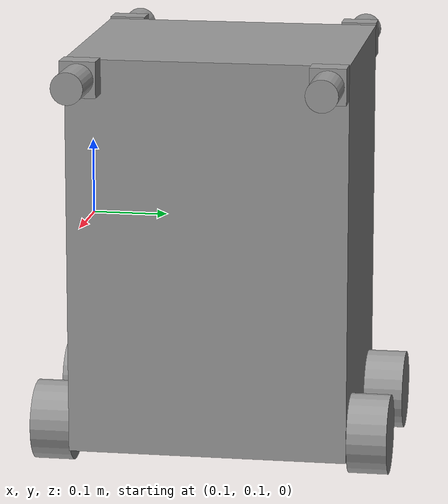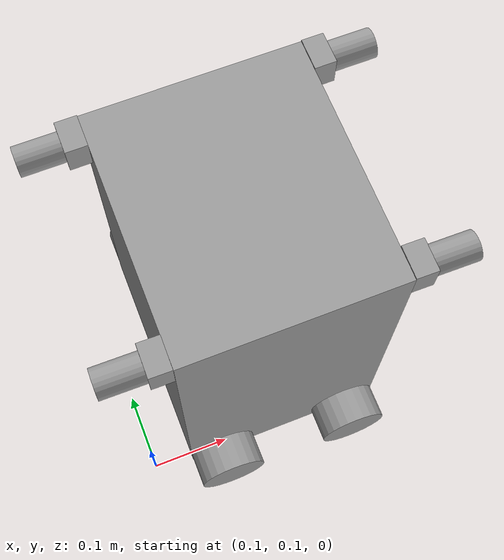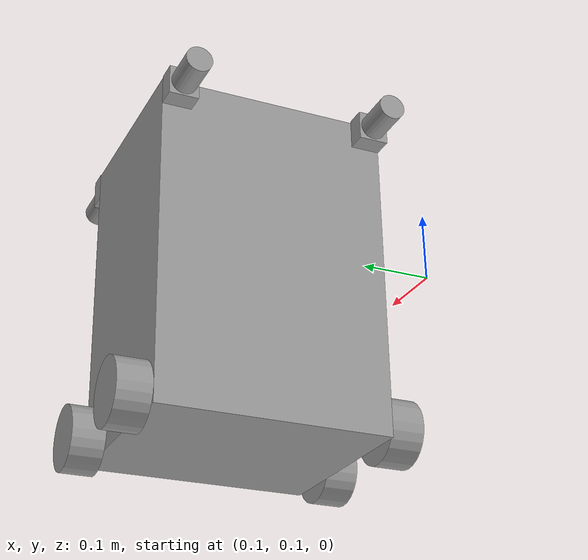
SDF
<?xml version='1.0'?>
<sdf version='1.6'>
  <model name='4WRobot_rev2'>
    <link name='link_0'>
      <pose frame=''>0.305794 0.311272 0.025 -0 -0 -0</pose>
      <inertial>
        <mass>1</mass>
        <inertia>
          <ixx>0.166667</ixx>
          <ixy>0</ixy>
          <ixz>0</ixz>
          <iyy>0.166667</iyy>
          <iyz>0</iyz>
          <izz>0.166667</izz>
        </inertia>
        <pose frame=''>0 0 0 0 -0 0</pose>
      </inertial>
      <self_collide>0</self_collide>
      <kinematic>0</kinematic>
      <visual name='visual'>
        <pose frame=''>0 0 0 0 -0 0</pose>
        <geometry>
          <box>
            <size>0.3 0.35 0.5</size>
          </box>
        </geometry>
        <material>
          <lighting>1</lighting>
          <script>
            <uri>file://media/materials/scripts/gazebo.material</uri>
            <name>Gazebo/Grey</name>
          </script>
          <ambient>0.3 0.3 0.3 1</ambient>
          <diffuse>0.7 0.7 0.7 1</diffuse>
          <specular>0.01 0.01 0.01 1</specular>
          <emissive>0 0 0 1</emissive>
          <shader type='vertex'>
            <normal_map>__default__</normal_map>
          </shader>
        </material>
        <transparency>0</transparency>
        <cast_shadows>1</cast_shadows>
      </visual>
      <collision name='collision'>
        <laser_retro>0</laser_retro>
        <max_contacts>10</max_contacts>
        <pose frame=''>0 0 0 0 -0 0</pose>
        <geometry>
          <box>
            <size>0.3 0.35 0.5</size>
          </box>
        </geometry>
        <surface>
          <friction>
            <ode>
              <mu>1</mu>
              <mu2>1</mu2>
              <fdir1>0 0 0</fdir1>
              <slip1>0</slip1>
              <slip2>0</slip2>
            </ode>
            <torsional>
              <coefficient>1</coefficient>
              <patch_radius>0</patch_radius>
              <surface_radius>0</surface_radius>
              <use_patch_radius>1</use_patch_radius>
              <ode>
                <slip>0</slip>
              </ode>
            </torsional>
          </friction>
          <bounce>
            <restitution_coefficient>0</restitution_coefficient>
            <threshold>1e+06</threshold>
          </bounce>
          <contact>
            <collide_without_contact>0</collide_without_contact>
            <collide_without_contact_bitmask>1</collide_without_contact_bitmask>
            <collide_bitmask>1</collide_bitmask>
            <ode>
              <soft_cfm>0</soft_cfm>
              <soft_erp>0.2</soft_erp>
              <kp>1e+13</kp>
              <kd>1</kd>
              <max_vel>0.01</max_vel>
              <min_depth>0</min_depth>
            </ode>
            <bullet>
              <split_impulse>1</split_impulse>
              <split_impulse_penetration_threshold>-0.01</split_impulse_penetration_threshold>
              <soft_cfm>0</soft_cfm>
              <soft_erp>0.2</soft_erp>
              <kp>1e+13</kp>
              <kd>1</kd>
            </bullet>
          </contact>
        </surface>
      </collision>
    </link>
    <link name='link_0_0_clone_0'>
      <pose frame=''>0.515794 0.463772 0.255 -3e-06 1.57 -3e-06</pose>
      <inertial>
        <mass>1</mass>
        <inertia>
          <ixx>0.145833</ixx>
          <ixy>0</ixy>
          <ixz>0</ixz>
          <iyy>0.145833</iyy>
          <iyz>0</iyz>
          <izz>0.125</izz>
        </inertia>
        <pose frame=''>0 0 0 0 -0 0</pose>
      </inertial>
      <self_collide>0</self_collide>
      <kinematic>0</kinematic>
      <visual name='visual_0'>
        <pose frame=''>0 0 0 0 -0 0</pose>
        <geometry>
          <cylinder>
            <radius>0.02</radius>
            <length>0.06</length>
          </cylinder>
        </geometry>
        <material>
          <lighting>1</lighting>
          <script>
            <uri>file://media/materials/scripts/gazebo.material</uri>
            <name>Gazebo/Grey</name>
          </script>
          <ambient>0.3 0.3 0.3 1</ambient>
          <diffuse>0.7 0.7 0.7 1</diffuse>
          <specular>0.01 0.01 0.01 1</specular>
          <emissive>0 0 0 1</emissive>
          <shader type='vertex'>
            <normal_map>__default__</normal_map>
          </shader>
        </material>
        <transparency>0</transparency>
        <cast_shadows>1</cast_shadows>
      </visual>
      <collision name='collision'>
        <laser_retro>0</laser_retro>
        <max_contacts>10</max_contacts>
        <pose frame=''>0 0 0 0 -0 0</pose>
        <geometry>
          <cylinder>
            <radius>0.02</radius>
            <length>0.06</length>
          </cylinder>
        </geometry>
        <surface>
          <friction>
            <ode>
              <mu>1</mu>
              <mu2>1</mu2>
              <fdir1>0 0 0</fdir1>
              <slip1>0</slip1>
              <slip2>0</slip2>
            </ode>
            <torsional>
              <coefficient>1</coefficient>
              <patch_radius>0</patch_radius>
              <surface_radius>0</surface_radius>
              <use_patch_radius>1</use_patch_radius>
              <ode>
                <slip>0</slip>
              </ode>
            </torsional>
          </friction>
          <bounce>
            <restitution_coefficient>0</restitution_coefficient>
            <threshold>1e+06</threshold>
          </bounce>
          <contact>
            <collide_without_contact>0</collide_without_contact>
            <collide_without_contact_bitmask>1</collide_without_contact_bitmask>
            <collide_bitmask>1</collide_bitmask>
            <ode>
              <soft_cfm>0</soft_cfm>
              <soft_erp>0.2</soft_erp>
              <kp>1e+13</kp>
              <kd>1</kd>
              <max_vel>0.01</max_vel>
              <min_depth>0</min_depth>
            </ode>
            <bullet>
              <split_impulse>1</split_impulse>
              <split_impulse_penetration_threshold>-0.01</split_impulse_penetration_threshold>
              <soft_cfm>0</soft_cfm>
              <soft_erp>0.2</soft_erp>
              <kp>1e+13</kp>
              <kd>1</kd>
            </bullet>
          </contact>
        </surface>
      </collision>
    </link>
    <link name='link_0_0_clone_0_clone'>
      <pose frame=''>0.096037 0.463844 0.255 0.002938 1.57 0.002917</pose>
      <inertial>
        <mass>1</mass>
        <inertia>
          <ixx>0.145833</ixx>
          <ixy>0</ixy>
          <ixz>0</ixz>
          <iyy>0.145833</iyy>
          <iyz>0</iyz>
          <izz>0.125</izz>
        </inertia>
        <pose frame=''>0 0 0 0 -0 0</pose>
      </inertial>
      <self_collide>0</self_collide>
      <kinematic>0</kinematic>
      <visual name='visual_0'>
        <pose frame=''>0 0 0 0 -0 0</pose>
        <geometry>
          <cylinder>
            <radius>0.02</radius>
            <length>0.06</length>
          </cylinder>
        </geometry>
        <material>
          <lighting>1</lighting>
          <script>
            <uri>file://media/materials/scripts/gazebo.material</uri>
            <name>Gazebo/Grey</name>
          </script>
          <ambient>0.3 0.3 0.3 1</ambient>
          <diffuse>0.7 0.7 0.7 1</diffuse>
          <specular>0.01 0.01 0.01 1</specular>
          <emissive>0 0 0 1</emissive>
          <shader type='vertex'>
            <normal_map>__default__</normal_map>
          </shader>
        </material>
        <transparency>0</transparency>
        <cast_shadows>1</cast_shadows>
      </visual>
      <collision name='collision'>
        <laser_retro>0</laser_retro>
        <max_contacts>10</max_contacts>
        <pose frame=''>0 0 0 0 -0 0</pose>
        <geometry>
          <cylinder>
            <radius>0.02</radius>
            <length>0.06</length>
          </cylinder>
        </geometry>
        <surface>
          <friction>
            <ode>
              <mu>1</mu>
              <mu2>1</mu2>
              <fdir1>0 0 0</fdir1>
              <slip1>0</slip1>
              <slip2>0</slip2>
            </ode>
            <torsional>
              <coefficient>1</coefficient>
              <patch_radius>0</patch_radius>
              <surface_radius>0</surface_radius>
              <use_patch_radius>1</use_patch_radius>
              <ode>
                <slip>0</slip>
              </ode>
            </torsional>
          </friction>
          <bounce>
            <restitution_coefficient>0</restitution_coefficient>
            <threshold>1e+06</threshold>
          </bounce>
          <contact>
            <collide_without_contact>0</collide_without_contact>
            <collide_without_contact_bitmask>1</collide_without_contact_bitmask>
            <collide_bitmask>1</collide_bitmask>
            <ode>
              <soft_cfm>0</soft_cfm>
              <soft_erp>0.2</soft_erp>
              <kp>1e+13</kp>
              <kd>1</kd>
              <max_vel>0.01</max_vel>
              <min_depth>0</min_depth>
            </ode>
            <bullet>
              <split_impulse>1</split_impulse>
              <split_impulse_penetration_threshold>-0.01</split_impulse_penetration_threshold>
              <soft_cfm>0</soft_cfm>
              <soft_erp>0.2</soft_erp>
              <kp>1e+13</kp>
              <kd>1</kd>
            </bullet>
          </contact>
        </surface>
      </collision>
    </link>
    <link name='link_0_0_clone_0_clone_0'>
      <pose frame=''>0.51579 0.158196 0.255 -0.000128 1.57 -0.01293</pose>
      <inertial>
        <mass>1</mass>
        <inertia>
          <ixx>0.145833</ixx>
          <ixy>0</ixy>
          <ixz>0</ixz>
          <iyy>0.145833</iyy>
          <iyz>0</iyz>
          <izz>0.125</izz>
        </inertia>
        <pose frame=''>0 0 0 0 -0 0</pose>
      </inertial>
      <self_collide>0</self_collide>
      <kinematic>0</kinematic>
      <visual name='visual_0'>
        <pose frame=''>0 0 0 0 -0 0</pose>
        <geometry>
          <cylinder>
            <radius>0.02</radius>
            <length>0.06</length>
          </cylinder>
        </geometry>
        <material>
          <lighting>1</lighting>
          <script>
            <uri>file://media/materials/scripts/gazebo.material</uri>
            <name>Gazebo/Grey</name>
          </script>
          <ambient>0.3 0.3 0.3 1</ambient>
          <diffuse>0.7 0.7 0.7 1</diffuse>
          <specular>0.01 0.01 0.01 1</specular>
          <emissive>0 0 0 1</emissive>
          <shader type='vertex'>
            <normal_map>__default__</normal_map>
          </shader>
        </material>
        <transparency>0</transparency>
        <cast_shadows>1</cast_shadows>
      </visual>
      <collision name='collision'>
        <laser_retro>0</laser_retro>
        <max_contacts>10</max_contacts>
        <pose frame=''>0 0 0 0 -0 0</pose>
        <geometry>
          <cylinder>
            <radius>0.02</radius>
            <length>0.06</length>
          </cylinder>
        </geometry>
        <surface>
          <friction>
            <ode>
              <mu>1</mu>
              <mu2>1</mu2>
              <fdir1>0 0 0</fdir1>
              <slip1>0</slip1>
              <slip2>0</slip2>
            </ode>
            <torsional>
              <coefficient>1</coefficient>
              <patch_radius>0</patch_radius>
              <surface_radius>0</surface_radius>
              <use_patch_radius>1</use_patch_radius>
              <ode>
                <slip>0</slip>
              </ode>
            </torsional>
          </friction>
          <bounce>
            <restitution_coefficient>0</restitution_coefficient>
            <threshold>1e+06</threshold>
          </bounce>
          <contact>
            <collide_without_contact>0</collide_without_contact>
            <collide_without_contact_bitmask>1</collide_without_contact_bitmask>
            <collide_bitmask>1</collide_bitmask>
            <ode>
              <soft_cfm>0</soft_cfm>
              <soft_erp>0.2</soft_erp>
              <kp>1e+13</kp>
              <kd>1</kd>
              <max_vel>0.01</max_vel>
              <min_depth>0</min_depth>
            </ode>
            <bullet>
              <split_impulse>1</split_impulse>
              <split_impulse_penetration_threshold>-0.01</split_impulse_penetration_threshold>
              <soft_cfm>0</soft_cfm>
              <soft_erp>0.2</soft_erp>
              <kp>1e+13</kp>
              <kd>1</kd>
            </bullet>
          </contact>
        </surface>
      </collision>
    </link>
    <link name='link_0_0_clone_0_clone_clone'>
      <pose frame=''>0.095798 0.15942 0.255 0.002918 1.57 -0.009905</pose>
      <inertial>
        <mass>1</mass>
        <inertia>
          <ixx>0.145833</ixx>
          <ixy>0</ixy>
          <ixz>0</ixz>
          <iyy>0.145833</iyy>
          <iyz>0</iyz>
          <izz>0.125</izz>
        </inertia>
        <pose frame=''>0 0 0 0 -0 0</pose>
      </inertial>
      <self_collide>0</self_collide>
      <kinematic>0</kinematic>
      <visual name='visual_0'>
        <pose frame=''>0 0 0 0 -0 0</pose>
        <geometry>
          <cylinder>
            <radius>0.02</radius>
            <length>0.06</length>
          </cylinder>
        </geometry>
        <material>
          <lighting>1</lighting>
          <script>
            <uri>file://media/materials/scripts/gazebo.material</uri>
            <name>Gazebo/Grey</name>
          </script>
          <ambient>0.3 0.3 0.3 1</ambient>
          <diffuse>0.7 0.7 0.7 1</diffuse>
          <specular>0.01 0.01 0.01 1</specular>
          <emissive>0 0 0 1</emissive>
          <shader type='vertex'>
            <normal_map>__default__</normal_map>
          </shader>
        </material>
        <transparency>0</transparency>
        <cast_shadows>1</cast_shadows>
      </visual>
      <collision name='collision'>
        <laser_retro>0</laser_retro>
        <max_contacts>10</max_contacts>
        <pose frame=''>0 0 0 0 -0 0</pose>
        <geometry>
          <cylinder>
            <radius>0.02</radius>
            <length>0.06</length>
          </cylinder>
        </geometry>
        <surface>
          <friction>
            <ode>
              <mu>1</mu>
              <mu2>1</mu2>
              <fdir1>0 0 0</fdir1>
              <slip1>0</slip1>
              <slip2>0</slip2>
            </ode>
            <torsional>
              <coefficient>1</coefficient>
              <patch_radius>0</patch_radius>
              <surface_radius>0</surface_radius>
              <use_patch_radius>1</use_patch_radius>
              <ode>
                <slip>0</slip>
              </ode>
            </torsional>
          </friction>
          <bounce>
            <restitution_coefficient>0</restitution_coefficient>
            <threshold>1e+06</threshold>
          </bounce>
          <contact>
            <collide_without_contact>0</collide_without_contact>
            <collide_without_contact_bitmask>1</collide_without_contact_bitmask>
            <collide_bitmask>1</collide_bitmask>
            <ode>
              <soft_cfm>0</soft_cfm>
              <soft_erp>0.2</soft_erp>
              <kp>1e+13</kp>
              <kd>1</kd>
              <max_vel>0.01</max_vel>
              <min_depth>0</min_depth>
            </ode>
            <bullet>
              <split_impulse>1</split_impulse>
              <split_impulse_penetration_threshold>-0.01</split_impulse_penetration_threshold>
              <soft_cfm>0</soft_cfm>
              <soft_erp>0.2</soft_erp>
              <kp>1e+13</kp>
              <kd>1</kd>
            </bullet>
          </contact>
        </surface>
      </collision>
    </link>
    <link name='link_1'>
      <pose frame=''>0.205794 0.111272 -0.2 1.57 -0 0</pose>
      <inertial>
        <mass>1</mass>
        <inertia>
          <ixx>0.145833</ixx>
          <ixy>0</ixy>
          <ixz>0</ixz>
          <iyy>0.145833</iyy>
          <iyz>0</iyz>
          <izz>0.125</izz>
        </inertia>
        <pose frame=''>0 0 0 0 -0 0</pose>
      </inertial>
      <self_collide>0</self_collide>
      <kinematic>0</kinematic>
      <visual name='visual'>
        <pose frame=''>0 0 0 0 -0 0</pose>
        <geometry>
          <cylinder>
            <radius>0.05</radius>
            <length>0.05</length>
          </cylinder>
        </geometry>
        <material>
          <lighting>1</lighting>
          <script>
            <uri>file://media/materials/scripts/gazebo.material</uri>
            <name>Gazebo/Grey</name>
          </script>
          <ambient>0.3 0.3 0.3 1</ambient>
          <diffuse>0.7 0.7 0.7 1</diffuse>
          <specular>0.01 0.01 0.01 1</specular>
          <emissive>0 0 0 1</emissive>
          <shader type='vertex'>
            <normal_map>__default__</normal_map>
          </shader>
        </material>
        <transparency>0</transparency>
        <cast_shadows>1</cast_shadows>
      </visual>
      <collision name='collision'>
        <laser_retro>0</laser_retro>
        <max_contacts>10</max_contacts>
        <pose frame=''>0 0 0 0 -0 0</pose>
        <geometry>
          <cylinder>
            <radius>0.05</radius>
            <length>0.05</length>
          </cylinder>
        </geometry>
        <surface>
          <friction>
            <ode>
              <mu>1</mu>
              <mu2>1</mu2>
              <fdir1>0 0 0</fdir1>
              <slip1>0</slip1>
              <slip2>0</slip2>
            </ode>
            <torsional>
              <coefficient>1</coefficient>
              <patch_radius>0</patch_radius>
              <surface_radius>0</surface_radius>
              <use_patch_radius>1</use_patch_radius>
              <ode>
                <slip>0</slip>
              </ode>
            </torsional>
          </friction>
          <bounce>
            <restitution_coefficient>0</restitution_coefficient>
            <threshold>1e+06</threshold>
          </bounce>
          <contact>
            <collide_without_contact>0</collide_without_contact>
            <collide_without_contact_bitmask>1</collide_without_contact_bitmask>
            <collide_bitmask>1</collide_bitmask>
            <ode>
              <soft_cfm>0</soft_cfm>
              <soft_erp>0.2</soft_erp>
              <kp>1e+13</kp>
              <kd>1</kd>
              <max_vel>0.01</max_vel>
              <min_depth>0</min_depth>
            </ode>
            <bullet>
              <split_impulse>1</split_impulse>
              <split_impulse_penetration_threshold>-0.01</split_impulse_penetration_threshold>
              <soft_cfm>0</soft_cfm>
              <soft_erp>0.2</soft_erp>
              <kp>1e+13</kp>
              <kd>1</kd>
            </bullet>
          </contact>
        </surface>
      </collision>
    </link>
    <link name='link_1_0_clone_clone'>
      <pose frame=''>0.140794 0.463772 0.255 0 -0 3.14</pose>
      <inertial>
        <mass>1</mass>
        <inertia>
          <ixx>0.166667</ixx>
          <ixy>0</ixy>
          <ixz>0</ixz>
          <iyy>0.166667</iyy>
          <iyz>0</iyz>
          <izz>0.166667</izz>
        </inertia>
        <pose frame=''>0 0 0 0 -0 0</pose>
      </inertial>
      <self_collide>0</self_collide>
      <kinematic>0</kinematic>
      <visual name='visual_0'>
        <pose frame=''>0 0 0 0 -0 0</pose>
        <geometry>
          <box>
            <size>0.03 0.045 0.045</size>
          </box>
        </geometry>
        <material>
          <lighting>1</lighting>
          <script>
            <uri>file://media/materials/scripts/gazebo.material</uri>
            <name>Gazebo/Grey</name>
          </script>
          <ambient>0.3 0.3 0.3 1</ambient>
          <diffuse>0.7 0.7 0.7 1</diffuse>
          <specular>0.01 0.01 0.01 1</specular>
          <emissive>0 0 0 1</emissive>
          <shader type='vertex'>
            <normal_map>__default__</normal_map>
          </shader>
        </material>
        <transparency>0</transparency>
        <cast_shadows>1</cast_shadows>
      </visual>
      <collision name='collision'>
        <laser_retro>0</laser_retro>
        <max_contacts>10</max_contacts>
        <pose frame=''>0 0 0 0 -0 0</pose>
        <geometry>
          <box>
            <size>0.03 0.045 0.045</size>
          </box>
        </geometry>
        <surface>
          <friction>
            <ode>
              <mu>1</mu>
              <mu2>1</mu2>
              <fdir1>0 0 0</fdir1>
              <slip1>0</slip1>
              <slip2>0</slip2>
            </ode>
            <torsional>
              <coefficient>1</coefficient>
              <patch_radius>0</patch_radius>
              <surface_radius>0</surface_radius>
              <use_patch_radius>1</use_patch_radius>
              <ode>
                <slip>0</slip>
              </ode>
            </torsional>
          </friction>
          <bounce>
            <restitution_coefficient>0</restitution_coefficient>
            <threshold>1e+06</threshold>
          </bounce>
          <contact>
            <collide_without_contact>0</collide_without_contact>
            <collide_without_contact_bitmask>1</collide_without_contact_bitmask>
            <collide_bitmask>1</collide_bitmask>
            <ode>
              <soft_cfm>0</soft_cfm>
              <soft_erp>0.2</soft_erp>
              <kp>1e+13</kp>
              <kd>1</kd>
              <max_vel>0.01</max_vel>
              <min_depth>0</min_depth>
            </ode>
            <bullet>
              <split_impulse>1</split_impulse>
              <split_impulse_penetration_threshold>-0.01</split_impulse_penetration_threshold>
              <soft_cfm>0</soft_cfm>
              <soft_erp>0.2</soft_erp>
              <kp>1e+13</kp>
              <kd>1</kd>
            </bullet>
          </contact>
        </surface>
      </collision>
    </link>
    <link name='link_1_0_clone_clone_0'>
      <pose frame=''>0.470794 0.463772 0.255 -0 -0 -0</pose>
      <inertial>
        <mass>1</mass>
        <inertia>
          <ixx>0.166667</ixx>
          <ixy>0</ixy>
          <ixz>0</ixz>
          <iyy>0.166667</iyy>
          <iyz>0</iyz>
          <izz>0.166667</izz>
        </inertia>
        <pose frame=''>0 0 0 0 -0 0</pose>
      </inertial>
      <self_collide>0</self_collide>
      <kinematic>0</kinematic>
      <visual name='visual_0'>
        <pose frame=''>0 0 0 0 -0 0</pose>
        <geometry>
          <box>
            <size>0.03 0.045 0.045</size>
          </box>
        </geometry>
        <material>
          <lighting>1</lighting>
          <script>
            <uri>file://media/materials/scripts/gazebo.material</uri>
            <name>Gazebo/Grey</name>
          </script>
          <ambient>0.3 0.3 0.3 1</ambient>
          <diffuse>0.7 0.7 0.7 1</diffuse>
          <specular>0.01 0.01 0.01 1</specular>
          <emissive>0 0 0 1</emissive>
          <shader type='vertex'>
            <normal_map>__default__</normal_map>
          </shader>
        </material>
        <transparency>0</transparency>
        <cast_shadows>1</cast_shadows>
      </visual>
      <collision name='collision'>
        <laser_retro>0</laser_retro>
        <max_contacts>10</max_contacts>
        <pose frame=''>0 0 0 0 -0 0</pose>
        <geometry>
          <box>
            <size>0.03 0.045 0.045</size>
          </box>
        </geometry>
        <surface>
          <friction>
            <ode>
              <mu>1</mu>
              <mu2>1</mu2>
              <fdir1>0 0 0</fdir1>
              <slip1>0</slip1>
              <slip2>0</slip2>
            </ode>
            <torsional>
              <coefficient>1</coefficient>
              <patch_radius>0</patch_radius>
              <surface_radius>0</surface_radius>
              <use_patch_radius>1</use_patch_radius>
              <ode>
                <slip>0</slip>
              </ode>
            </torsional>
          </friction>
          <bounce>
            <restitution_coefficient>0</restitution_coefficient>
            <threshold>1e+06</threshold>
          </bounce>
          <contact>
            <collide_without_contact>0</collide_without_contact>
            <collide_without_contact_bitmask>1</collide_without_contact_bitmask>
            <collide_bitmask>1</collide_bitmask>
            <ode>
              <soft_cfm>0</soft_cfm>
              <soft_erp>0.2</soft_erp>
              <kp>1e+13</kp>
              <kd>1</kd>
              <max_vel>0.01</max_vel>
              <min_depth>0</min_depth>
            </ode>
            <bullet>
              <split_impulse>1</split_impulse>
              <split_impulse_penetration_threshold>-0.01</split_impulse_penetration_threshold>
              <soft_cfm>0</soft_cfm>
              <soft_erp>0.2</soft_erp>
              <kp>1e+13</kp>
              <kd>1</kd>
            </bullet>
          </contact>
        </surface>
      </collision>
    </link>
    <link name='link_1_0_clone_clone_0_clone'>
      <pose frame=''>0.470794 0.158772 0.255 -0 2e-06 -0.012802</pose>
      <inertial>
        <mass>1</mass>
        <inertia>
          <ixx>0.166667</ixx>
          <ixy>0</ixy>
          <ixz>0</ixz>
          <iyy>0.166667</iyy>
          <iyz>0</iyz>
          <izz>0.166667</izz>
        </inertia>
        <pose frame=''>0 0 0 0 -0 0</pose>
      </inertial>
      <self_collide>0</self_collide>
      <kinematic>0</kinematic>
      <visual name='visual_0'>
        <pose frame=''>0 0 0 0 -0 0</pose>
        <geometry>
          <box>
            <size>0.03 0.045 0.045</size>
          </box>
        </geometry>
        <material>
          <lighting>1</lighting>
          <script>
            <uri>file://media/materials/scripts/gazebo.material</uri>
            <name>Gazebo/Grey</name>
          </script>
          <ambient>0.3 0.3 0.3 1</ambient>
          <diffuse>0.7 0.7 0.7 1</diffuse>
          <specular>0.01 0.01 0.01 1</specular>
          <emissive>0 0 0 1</emissive>
          <shader type='vertex'>
            <normal_map>__default__</normal_map>
          </shader>
        </material>
        <transparency>0</transparency>
        <cast_shadows>1</cast_shadows>
      </visual>
      <collision name='collision'>
        <laser_retro>0</laser_retro>
        <max_contacts>10</max_contacts>
        <pose frame=''>0 0 0 0 -0 0</pose>
        <geometry>
          <box>
            <size>0.03 0.045 0.045</size>
          </box>
        </geometry>
        <surface>
          <friction>
            <ode>
              <mu>1</mu>
              <mu2>1</mu2>
              <fdir1>0 0 0</fdir1>
              <slip1>0</slip1>
              <slip2>0</slip2>
            </ode>
            <torsional>
              <coefficient>1</coefficient>
              <patch_radius>0</patch_radius>
              <surface_radius>0</surface_radius>
              <use_patch_radius>1</use_patch_radius>
              <ode>
                <slip>0</slip>
              </ode>
            </torsional>
          </friction>
          <bounce>
            <restitution_coefficient>0</restitution_coefficient>
            <threshold>1e+06</threshold>
          </bounce>
          <contact>
            <collide_without_contact>0</collide_without_contact>
            <collide_without_contact_bitmask>1</collide_without_contact_bitmask>
            <collide_bitmask>1</collide_bitmask>
            <ode>
              <soft_cfm>0</soft_cfm>
              <soft_erp>0.2</soft_erp>
              <kp>1e+13</kp>
              <kd>1</kd>
              <max_vel>0.01</max_vel>
              <min_depth>0</min_depth>
            </ode>
            <bullet>
              <split_impulse>1</split_impulse>
              <split_impulse_penetration_threshold>-0.01</split_impulse_penetration_threshold>
              <soft_cfm>0</soft_cfm>
              <soft_erp>0.2</soft_erp>
              <kp>1e+13</kp>
              <kd>1</kd>
            </bullet>
          </contact>
        </surface>
      </collision>
    </link>
    <link name='link_1_0_clone_clone_clone'>
      <pose frame=''>0.140794 0.158772 0.255 0 -2e-06 3.1272</pose>
      <inertial>
        <mass>1</mass>
        <inertia>
          <ixx>0.166667</ixx>
          <ixy>0</ixy>
          <ixz>0</ixz>
          <iyy>0.166667</iyy>
          <iyz>0</iyz>
          <izz>0.166667</izz>
        </inertia>
        <pose frame=''>0 0 0 0 -0 0</pose>
      </inertial>
      <self_collide>0</self_collide>
      <kinematic>0</kinematic>
      <visual name='visual_0'>
        <pose frame=''>0 0 0 0 -0 0</pose>
        <geometry>
          <box>
            <size>0.03 0.045 0.045</size>
          </box>
        </geometry>
        <material>
          <lighting>1</lighting>
          <script>
            <uri>file://media/materials/scripts/gazebo.material</uri>
            <name>Gazebo/Grey</name>
          </script>
          <ambient>0.3 0.3 0.3 1</ambient>
          <diffuse>0.7 0.7 0.7 1</diffuse>
          <specular>0.01 0.01 0.01 1</specular>
          <emissive>0 0 0 1</emissive>
          <shader type='vertex'>
            <normal_map>__default__</normal_map>
          </shader>
        </material>
        <transparency>0</transparency>
        <cast_shadows>1</cast_shadows>
      </visual>
      <collision name='collision'>
        <laser_retro>0</laser_retro>
        <max_contacts>10</max_contacts>
        <pose frame=''>0 0 0 0 -0 0</pose>
        <geometry>
          <box>
            <size>0.03 0.045 0.045</size>
          </box>
        </geometry>
        <surface>
          <friction>
            <ode>
              <mu>1</mu>
              <mu2>1</mu2>
              <fdir1>0 0 0</fdir1>
              <slip1>0</slip1>
              <slip2>0</slip2>
            </ode>
            <torsional>
              <coefficient>1</coefficient>
              <patch_radius>0</patch_radius>
              <surface_radius>0</surface_radius>
              <use_patch_radius>1</use_patch_radius>
              <ode>
                <slip>0</slip>
              </ode>
            </torsional>
          </friction>
          <bounce>
            <restitution_coefficient>0</restitution_coefficient>
            <threshold>1e+06</threshold>
          </bounce>
          <contact>
            <collide_without_contact>0</collide_without_contact>
            <collide_without_contact_bitmask>1</collide_without_contact_bitmask>
            <collide_bitmask>1</collide_bitmask>
            <ode>
              <soft_cfm>0</soft_cfm>
              <soft_erp>0.2</soft_erp>
              <kp>1e+13</kp>
              <kd>1</kd>
              <max_vel>0.01</max_vel>
              <min_depth>0</min_depth>
            </ode>
            <bullet>
              <split_impulse>1</split_impulse>
              <split_impulse_penetration_threshold>-0.01</split_impulse_penetration_threshold>
              <soft_cfm>0</soft_cfm>
              <soft_erp>0.2</soft_erp>
              <kp>1e+13</kp>
              <kd>1</kd>
            </bullet>
          </contact>
        </surface>
      </collision>
    </link>
    <link name='link_1_clone'>
      <pose frame=''>0.405794 0.111272 -0.2 1.57 -0 0</pose>
      <inertial>
        <mass>1</mass>
        <inertia>
          <ixx>0.145833</ixx>
          <ixy>0</ixy>
          <ixz>0</ixz>
          <iyy>0.145833</iyy>
          <iyz>0</iyz>
          <izz>0.125</izz>
        </inertia>
        <pose frame=''>0 0 0 0 -0 0</pose>
      </inertial>
      <self_collide>0</self_collide>
      <kinematic>0</kinematic>
      <visual name='visual'>
        <pose frame=''>0 0 0 0 -0 0</pose>
        <geometry>
          <cylinder>
            <radius>0.05</radius>
            <length>0.05</length>
          </cylinder>
        </geometry>
        <material>
          <lighting>1</lighting>
          <script>
            <uri>file://media/materials/scripts/gazebo.material</uri>
            <name>Gazebo/Grey</name>
          </script>
          <ambient>0.3 0.3 0.3 1</ambient>
          <diffuse>0.7 0.7 0.7 1</diffuse>
          <specular>0.01 0.01 0.01 1</specular>
          <emissive>0 0 0 1</emissive>
          <shader type='vertex'>
            <normal_map>__default__</normal_map>
          </shader>
        </material>
        <transparency>0</transparency>
        <cast_shadows>1</cast_shadows>
      </visual>
      <collision name='collision'>
        <laser_retro>0</laser_retro>
        <max_contacts>10</max_contacts>
        <pose frame=''>0 0 0 0 -0 0</pose>
        <geometry>
          <cylinder>
            <radius>0.05</radius>
            <length>0.05</length>
          </cylinder>
        </geometry>
        <surface>
          <friction>
            <ode>
              <mu>1</mu>
              <mu2>1</mu2>
              <fdir1>0 0 0</fdir1>
              <slip1>0</slip1>
              <slip2>0</slip2>
            </ode>
            <torsional>
              <coefficient>1</coefficient>
              <patch_radius>0</patch_radius>
              <surface_radius>0</surface_radius>
              <use_patch_radius>1</use_patch_radius>
              <ode>
                <slip>0</slip>
              </ode>
            </torsional>
          </friction>
          <bounce>
            <restitution_coefficient>0</restitution_coefficient>
            <threshold>1e+06</threshold>
          </bounce>
          <contact>
            <collide_without_contact>0</collide_without_contact>
            <collide_without_contact_bitmask>1</collide_without_contact_bitmask>
            <collide_bitmask>1</collide_bitmask>
            <ode>
              <soft_cfm>0</soft_cfm>
              <soft_erp>0.2</soft_erp>
              <kp>1e+13</kp>
              <kd>1</kd>
              <max_vel>0.01</max_vel>
              <min_depth>0</min_depth>
            </ode>
            <bullet>
              <split_impulse>1</split_impulse>
              <split_impulse_penetration_threshold>-0.01</split_impulse_penetration_threshold>
              <soft_cfm>0</soft_cfm>
              <soft_erp>0.2</soft_erp>
              <kp>1e+13</kp>
              <kd>1</kd>
            </bullet>
          </contact>
        </surface>
      </collision>
    </link>
    <link name='link_1_clone_clone'>
      <pose frame=''>0.405794 0.511272 -0.2 1.57 -0 0</pose>
      <inertial>
        <mass>1</mass>
        <inertia>
          <ixx>0.145833</ixx>
          <ixy>0</ixy>
          <ixz>0</ixz>
          <iyy>0.145833</iyy>
          <iyz>0</iyz>
          <izz>0.125</izz>
        </inertia>
        <pose frame=''>0 0 0 0 -0 0</pose>
      </inertial>
      <self_collide>0</self_collide>
      <kinematic>0</kinematic>
      <visual name='visual'>
        <pose frame=''>0 0 0 0 -0 0</pose>
        <geometry>
          <cylinder>
            <radius>0.05</radius>
            <length>0.05</length>
          </cylinder>
        </geometry>
        <material>
          <lighting>1</lighting>
          <script>
            <uri>file://media/materials/scripts/gazebo.material</uri>
            <name>Gazebo/Grey</name>
          </script>
          <ambient>0.3 0.3 0.3 1</ambient>
          <diffuse>0.7 0.7 0.7 1</diffuse>
          <specular>0.01 0.01 0.01 1</specular>
          <emissive>0 0 0 1</emissive>
          <shader type='vertex'>
            <normal_map>__default__</normal_map>
          </shader>
        </material>
        <transparency>0</transparency>
        <cast_shadows>1</cast_shadows>
      </visual>
      <collision name='collision'>
        <laser_retro>0</laser_retro>
        <max_contacts>10</max_contacts>
        <pose frame=''>0 0 0 0 -0 0</pose>
        <geometry>
          <cylinder>
            <radius>0.05</radius>
            <length>0.05</length>
          </cylinder>
        </geometry>
        <surface>
          <friction>
            <ode>
              <mu>1</mu>
              <mu2>1</mu2>
              <fdir1>0 0 0</fdir1>
              <slip1>0</slip1>
              <slip2>0</slip2>
            </ode>
            <torsional>
              <coefficient>1</coefficient>
              <patch_radius>0</patch_radius>
              <surface_radius>0</surface_radius>
              <use_patch_radius>1</use_patch_radius>
              <ode>
                <slip>0</slip>
              </ode>
            </torsional>
          </friction>
          <bounce>
            <restitution_coefficient>0</restitution_coefficient>
            <threshold>1e+06</threshold>
          </bounce>
          <contact>
            <collide_without_contact>0</collide_without_contact>
            <collide_without_contact_bitmask>1</collide_without_contact_bitmask>
            <collide_bitmask>1</collide_bitmask>
            <ode>
              <soft_cfm>0</soft_cfm>
              <soft_erp>0.2</soft_erp>
              <kp>1e+13</kp>
              <kd>1</kd>
              <max_vel>0.01</max_vel>
              <min_depth>0</min_depth>
            </ode>
            <bullet>
              <split_impulse>1</split_impulse>
              <split_impulse_penetration_threshold>-0.01</split_impulse_penetration_threshold>
              <soft_cfm>0</soft_cfm>
              <soft_erp>0.2</soft_erp>
              <kp>1e+13</kp>
              <kd>1</kd>
            </bullet>
          </contact>
        </surface>
      </collision>
    </link>
    <link name='link_1_clone_clone_clone'>
      <pose frame=''>0.205794 0.511272 -0.2 1.57 -0 0</pose>
      <inertial>
        <mass>1</mass>
        <inertia>
          <ixx>0.145833</ixx>
          <ixy>0</ixy>
          <ixz>0</ixz>
          <iyy>0.145833</iyy>
          <iyz>0</iyz>
          <izz>0.125</izz>
        </inertia>
        <pose frame=''>0 0 0 0 -0 0</pose>
      </inertial>
      <self_collide>0</self_collide>
      <kinematic>0</kinematic>
      <visual name='visual'>
        <pose frame=''>0 0 0 0 -0 0</pose>
        <geometry>
          <cylinder>
            <radius>0.05</radius>
            <length>0.05</length>
          </cylinder>
        </geometry>
        <material>
          <lighting>1</lighting>
          <script>
            <uri>file://media/materials/scripts/gazebo.material</uri>
            <name>Gazebo/Grey</name>
          </script>
          <ambient>0.3 0.3 0.3 1</ambient>
          <diffuse>0.7 0.7 0.7 1</diffuse>
          <specular>0.01 0.01 0.01 1</specular>
          <emissive>0 0 0 1</emissive>
          <shader type='vertex'>
            <normal_map>__default__</normal_map>
          </shader>
        </material>
        <transparency>0</transparency>
        <cast_shadows>1</cast_shadows>
      </visual>
      <collision name='collision'>
        <laser_retro>0</laser_retro>
        <max_contacts>10</max_contacts>
        <pose frame=''>0 0 0 0 -0 0</pose>
        <geometry>
          <cylinder>
            <radius>0.05</radius>
            <length>0.05</length>
          </cylinder>
        </geometry>
        <surface>
          <friction>
            <ode>
              <mu>1</mu>
              <mu2>1</mu2>
              <fdir1>0 0 0</fdir1>
              <slip1>0</slip1>
              <slip2>0</slip2>
            </ode>
            <torsional>
              <coefficient>1</coefficient>
              <patch_radius>0</patch_radius>
              <surface_radius>0</surface_radius>
              <use_patch_radius>1</use_patch_radius>
              <ode>
                <slip>0</slip>
              </ode>
            </torsional>
          </friction>
          <bounce>
            <restitution_coefficient>0</restitution_coefficient>
            <threshold>1e+06</threshold>
          </bounce>
          <contact>
            <collide_without_contact>0</collide_without_contact>
            <collide_without_contact_bitmask>1</collide_without_contact_bitmask>
            <collide_bitmask>1</collide_bitmask>
            <ode>
              <soft_cfm>0</soft_cfm>
              <soft_erp>0.2</soft_erp>
              <kp>1e+13</kp>
              <kd>1</kd>
              <max_vel>0.01</max_vel>
              <min_depth>0</min_depth>
            </ode>
            <bullet>
              <split_impulse>1</split_impulse>
              <split_impulse_penetration_threshold>-0.01</split_impulse_penetration_threshold>
              <soft_cfm>0</soft_cfm>
              <soft_erp>0.2</soft_erp>
              <kp>1e+13</kp>
              <kd>1</kd>
            </bullet>
          </contact>
        </surface>
      </collision>
    </link>
    <joint name='link_0_JOINT_0' type='revolute'>
      <parent>link_0</parent>
      <child>link_1_clone_clone</child>
      <pose frame=''>0 0 0 0 -0 0</pose>
      <axis>
        <xyz>1 0 0</xyz>
        <use_parent_model_frame>0</use_parent_model_frame>
        <limit>
          <lower>-1.79769e+308</lower>
          <upper>1.79769e+308</upper>
          <effort>-1</effort>
          <velocity>-1</velocity>
        </limit>
        <dynamics>
          <spring_reference>0</spring_reference>
          <spring_stiffness>0</spring_stiffness>
          <damping>0</damping>
          <friction>0</friction>
        </dynamics>
      </axis>
      <physics>
        <ode>
          <limit>
            <cfm>0</cfm>
            <erp>0.2</erp>
          </limit>
          <suspension>
            <cfm>0</cfm>
            <erp>0.2</erp>
          </suspension>
        </ode>
      </physics>
    </joint>
    <joint name='link_0_JOINT_11' type='revolute'>
      <parent>link_0</parent>
      <child>link_1_0_clone_clone_0_clone</child>
      <pose frame=''>0 0 0 0 -0 0</pose>
      <axis>
        <xyz>1 0 0</xyz>
        <use_parent_model_frame>0</use_parent_model_frame>
        <limit>
          <lower>-1.79769e+308</lower>
          <upper>1.79769e+308</upper>
          <effort>-1</effort>
          <velocity>-1</velocity>
        </limit>
        <dynamics>
          <spring_reference>0</spring_reference>
          <spring_stiffness>0</spring_stiffness>
          <damping>0</damping>
        </dynamics>
      </axis>
      <physics>
        <ode>
          <limit>
            <cfm>0</cfm>
            <erp>0.2</erp>
          </limit>
          <suspension>
            <cfm>0</cfm>
            <erp>0.2</erp>
          </suspension>
        </ode>
      </physics>
    </joint>
    <joint name='link_0_JOINT_1' type='revolute'>
      <parent>link_0</parent>
      <child>link_1_clone_clone_clone</child>
      <pose frame=''>0 0 0 0 -0 0</pose>
      <axis>
        <xyz>1 0 0</xyz>
        <use_parent_model_frame>0</use_parent_model_frame>
        <limit>
          <lower>-1.79769e+308</lower>
          <upper>1.79769e+308</upper>
          <effort>-1</effort>
          <velocity>-1</velocity>
        </limit>
        <dynamics>
          <spring_reference>0</spring_reference>
          <spring_stiffness>0</spring_stiffness>
          <damping>0</damping>
          <friction>0</friction>
        </dynamics>
      </axis>
      <physics>
        <ode>
          <limit>
            <cfm>0</cfm>
            <erp>0.2</erp>
          </limit>
          <suspension>
            <cfm>0</cfm>
            <erp>0.2</erp>
          </suspension>
        </ode>
      </physics>
    </joint>
    <joint name='link_0_JOINT_2' type='revolute'>
      <parent>link_0</parent>
      <child>link_1</child>
      <pose frame=''>0 0 0 0 -0 0</pose>
      <axis>
        <xyz>1 0 0</xyz>
        <use_parent_model_frame>0</use_parent_model_frame>
        <limit>
          <lower>-1.79769e+308</lower>
          <upper>1.79769e+308</upper>
          <effort>-1</effort>
          <velocity>-1</velocity>
        </limit>
        <dynamics>
          <spring_reference>0</spring_reference>
          <spring_stiffness>0</spring_stiffness>
          <damping>0</damping>
          <friction>0</friction>
        </dynamics>
      </axis>
      <physics>
        <ode>
          <limit>
            <cfm>0</cfm>
            <erp>0.2</erp>
          </limit>
          <suspension>
            <cfm>0</cfm>
            <erp>0.2</erp>
          </suspension>
        </ode>
      </physics>
    </joint>
    <joint name='link_0_JOINT_3' type='revolute'>
      <parent>link_0</parent>
      <child>link_1_clone</child>
      <pose frame=''>0 0 0 0 -0 0</pose>
      <axis>
        <xyz>1 0 0</xyz>
        <use_parent_model_frame>0</use_parent_model_frame>
        <limit>
          <lower>-1.79769e+308</lower>
          <upper>1.79769e+308</upper>
          <effort>-1</effort>
          <velocity>-1</velocity>
        </limit>
        <dynamics>
          <spring_reference>0</spring_reference>
          <spring_stiffness>0</spring_stiffness>
          <damping>0</damping>
          <friction>0</friction>
        </dynamics>
      </axis>
      <physics>
        <ode>
          <limit>
            <cfm>0</cfm>
            <erp>0.2</erp>
          </limit>
          <suspension>
            <cfm>0</cfm>
            <erp>0.2</erp>
          </suspension>
        </ode>
      </physics>
    </joint>
    <joint name='link_0_JOINT_5' type='revolute'>
      <parent>link_0</parent>
      <child>link_1_0_clone_clone</child>
      <pose frame=''>0 0 0 0 -0 0</pose>
      <axis>
        <xyz>1 0 0</xyz>
        <use_parent_model_frame>0</use_parent_model_frame>
        <limit>
          <lower>-1.79769e+308</lower>
          <upper>1.79769e+308</upper>
          <effort>-1</effort>
          <velocity>-1</velocity>
        </limit>
        <dynamics>
          <spring_reference>0</spring_reference>
          <spring_stiffness>0</spring_stiffness>
          <damping>0</damping>
          <friction>0</friction>
        </dynamics>
      </axis>
      <physics>
        <ode>
          <limit>
            <cfm>0</cfm>
            <erp>0.2</erp>
          </limit>
          <suspension>
            <cfm>0</cfm>
            <erp>0.2</erp>
          </suspension>
        </ode>
      </physics>
    </joint>
    <joint name='link_0_JOINT_7' type='revolute'>
      <parent>link_0</parent>
      <child>link_1_0_clone_clone_clone</child>
      <pose frame=''>0 0 0 0 -0 0</pose>
      <axis>
        <xyz>1 0 0</xyz>
        <use_parent_model_frame>0</use_parent_model_frame>
        <limit>
          <lower>-1.79769e+308</lower>
          <upper>1.79769e+308</upper>
          <effort>-1</effort>
          <velocity>-1</velocity>
        </limit>
        <dynamics>
          <spring_reference>0</spring_reference>
          <spring_stiffness>0</spring_stiffness>
          <damping>0</damping>
        </dynamics>
      </axis>
      <physics>
        <ode>
          <limit>
            <cfm>0</cfm>
            <erp>0.2</erp>
          </limit>
          <suspension>
            <cfm>0</cfm>
            <erp>0.2</erp>
          </suspension>
        </ode>
      </physics>
    </joint>
    <joint name='link_0_JOINT_9' type='revolute'>
      <parent>link_0</parent>
      <child>link_1_0_clone_clone_0</child>
      <pose frame=''>0 0 0 0 -0 0</pose>
      <axis>
        <xyz>1 0 0</xyz>
        <use_parent_model_frame>0</use_parent_model_frame>
        <limit>
          <lower>-1.79769e+308</lower>
          <upper>1.79769e+308</upper>
          <effort>-1</effort>
          <velocity>-1</velocity>
        </limit>
        <dynamics>
          <spring_reference>0</spring_reference>
          <spring_stiffness>0</spring_stiffness>
          <damping>0</damping>
        </dynamics>
      </axis>
      <physics>
        <ode>
          <limit>
            <cfm>0</cfm>
            <erp>0.2</erp>
          </limit>
          <suspension>
            <cfm>0</cfm>
            <erp>0.2</erp>
          </suspension>
        </ode>
      </physics>
    </joint>
    <joint name='link_1_0_clone_clone_0_JOINT_10' type='revolute'>
      <parent>link_1_0_clone_clone_0</parent>
      <child>link_0_0_clone_0</child>
      <pose frame=''>0 0 0 0 -0 0</pose>
      <axis>
        <xyz>1 0 0</xyz>
        <use_parent_model_frame>0</use_parent_model_frame>
        <limit>
          <lower>-1.79769e+308</lower>
          <upper>1.79769e+308</upper>
          <effort>-1</effort>
          <velocity>-1</velocity>
        </limit>
        <dynamics>
          <spring_reference>0</spring_reference>
          <spring_stiffness>0</spring_stiffness>
          <damping>0</damping>
        </dynamics>
      </axis>
      <physics>
        <ode>
          <limit>
            <cfm>0</cfm>
            <erp>0.2</erp>
          </limit>
          <suspension>
            <cfm>0</cfm>
            <erp>0.2</erp>
          </suspension>
        </ode>
      </physics>
    </joint>
    <joint name='link_1_0_clone_clone_0_clone_JOINT_12' type='revolute'>
      <parent>link_1_0_clone_clone_0_clone</parent>
      <child>link_0_0_clone_0_clone_0</child>
      <pose frame=''>0 0 0 0 -0 0</pose>
      <axis>
        <xyz>1 0 0</xyz>
        <use_parent_model_frame>0</use_parent_model_frame>
        <limit>
          <lower>-1.79769e+308</lower>
          <upper>1.79769e+308</upper>
          <effort>-1</effort>
          <velocity>-1</velocity>
        </limit>
        <dynamics>
          <spring_reference>0</spring_reference>
          <spring_stiffness>0</spring_stiffness>
          <damping>0</damping>
        </dynamics>
      </axis>
      <physics>
        <ode>
          <limit>
            <cfm>0</cfm>
            <erp>0.2</erp>
          </limit>
          <suspension>
            <cfm>0</cfm>
            <erp>0.2</erp>
          </suspension>
        </ode>
      </physics>
    </joint>
    <joint name='link_1_0_clone_clone_JOINT_6' type='revolute'>
      <parent>link_1_0_clone_clone</parent>
      <child>link_0_0_clone_0_clone</child>
      <pose frame=''>0 0 0 0 -0 0</pose>
      <axis>
        <xyz>1 0 0</xyz>
        <use_parent_model_frame>0</use_parent_model_frame>
        <limit>
          <lower>-1.79769e+308</lower>
          <upper>1.79769e+308</upper>
          <effort>-1</effort>
          <velocity>-1</velocity>
        </limit>
        <dynamics>
          <spring_reference>0</spring_reference>
          <spring_stiffness>0</spring_stiffness>
          <damping>0</damping>
          <friction>0</friction>
        </dynamics>
      </axis>
      <physics>
        <ode>
          <limit>
            <cfm>0</cfm>
            <erp>0.2</erp>
          </limit>
          <suspension>
            <cfm>0</cfm>
            <erp>0.2</erp>
          </suspension>
        </ode>
      </physics>
    </joint>
    <joint name='link_1_0_clone_clone_clone_JOINT_8' type='revolute'>
      <parent>link_1_0_clone_clone_clone</parent>
      <child>link_0_0_clone_0_clone_clone</child>
      <pose frame=''>0 0 0 0 -0 0</pose>
      <axis>
        <xyz>1 0 0</xyz>
        <use_parent_model_frame>0</use_parent_model_frame>
        <limit>
          <lower>-1.79769e+308</lower>
          <upper>1.79769e+308</upper>
          <effort>-1</effort>
          <velocity>-1</velocity>
        </limit>
        <dynamics>
          <spring_reference>0</spring_reference>
          <spring_stiffness>0</spring_stiffness>
          <damping>0</damping>
        </dynamics>
      </axis>
      <physics>
        <ode>
          <limit>
            <cfm>0</cfm>
            <erp>0.2</erp>
          </limit>
          <suspension>
            <cfm>0</cfm>
            <erp>0.2</erp>
          </suspension>
        </ode>
      </physics>
    </joint>
    <static>0</static>
    <allow_auto_disable>1</allow_auto_disable>
  </model>
</sdf>
